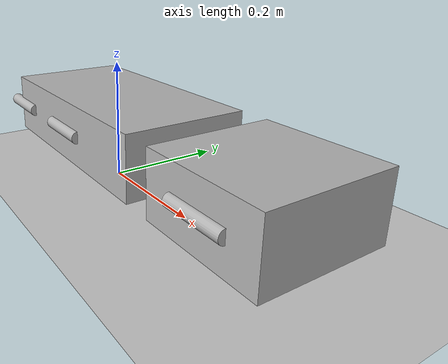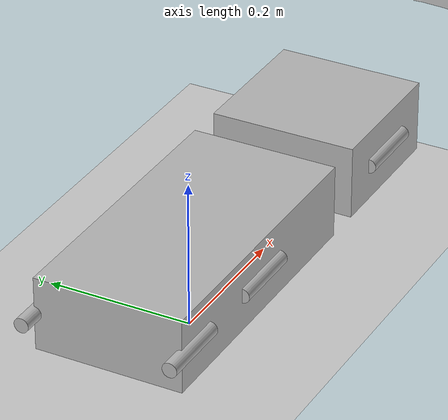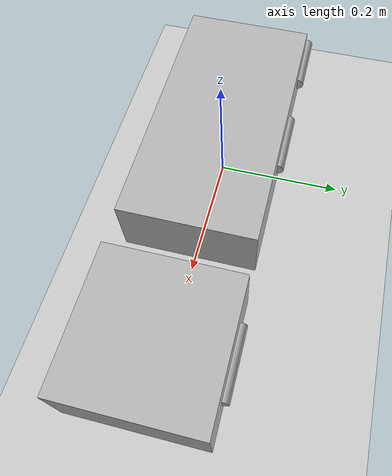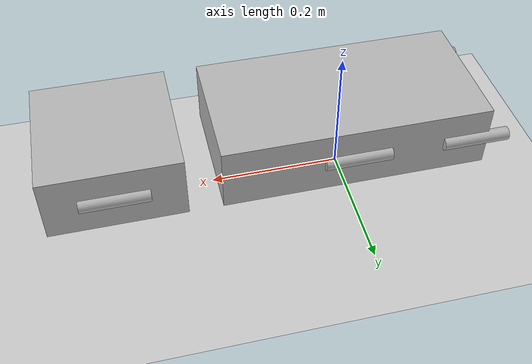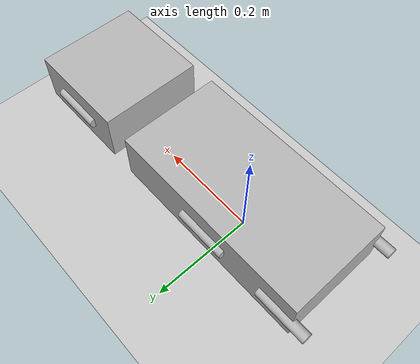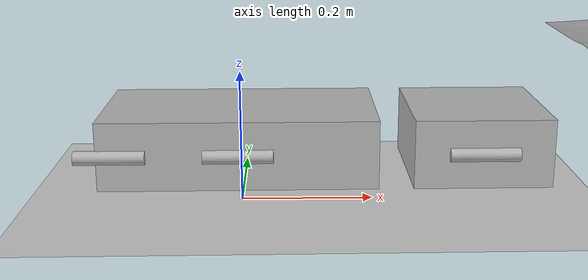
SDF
<?xml version="1.0"?>
<sdf version="1.4">
    <world name="default">

<!-- Ground Plane -->
<include>
    <uri>model://ground_plane</uri>
</include>

<include>
    <uri>model://sun</uri>
</include>

<model name="uneven_terrain">
    <pose>2.5 0 0  0 0 0</pose>
    <static>true</static>
    <link name="uneven terrain">
        <visual name="visual">
            <geometry>
                <mesh><uri>file://mountain2.dae</uri></mesh>
            </geometry>
        </visual>
        <collision name="collision">
            <geometry>
                <mesh><uri>file://mountain2.dae</uri></mesh>
            </geometry>
        </collision>
    </link>
</model>

<model name="my_robot">
    <static> false </static>
    <plugin name="model_push" filename="build/libmodel_push.so"/>
    <link name='chassis_front'>
        <pose> 0.35 0 .10 0 0 0 </pose>
        <inertial>
            <mass> 10 </mass>
        </inertial>
        <collision name='collision'>
            <geometry>
                <box>
                    <size> 0.2 0.2 0.1 </size>
                </box>
            </geometry>
        </collision>
        <visual name='visual'>
            <pose> 0 0 0 0 0 0 </pose>
            <geometry>
                <box>
                    <size> 0.2 0.2 0.1 </size>
                </box>
            </geometry>
        </visual>
        <self_collide> true </self_collide>
    </link>

    <link name='chassis_back'>
        <pose> 0 0 .1 0 0 0 </pose>
        <self_collide> true </self_collide>
        <collision name='collision'>
            <geometry>
                <box>
                    <size> 0.4 0.2 0.1 </size>
                </box>
            </geometry>
        </collision>
        <inertial>
            <mass> 10 </mass>
        </inertial>
        <visual name='visual'>
            <pose> 0 0 0 0 0 0 </pose>
            <geometry>
                <box>
                    <size> 0.4 0.2 0.1 </size>
                </box>
                </geometry>
            </visual>
        </link>

        <joint type="revolute" name="body_joint">
            <pose> -0.1 0 0 0 0 0 </pose>
            <child> chassis_front </child>
            <parent> chassis_back </parent>
            <axis>
                <xyz> 0 1 0 </xyz>
            </axis>
        </joint>

        <link name="leg1">
            <pose> 0.35 0.1 0.1 0  1.57  0 </pose>

            <collision name="collision">
                <geometry>
                    <cylinder>
                        <radius> 0.01 </radius>
                        <length> 0.1 </length>
                    </cylinder>
                </geometry>
            </collision>

            <visual name="visual">
                <geometry>
                    <cylinder>
                        <radius> 0.01 </radius>
                        <length> 0.1 </length>
                    </cylinder>
                </geometry>
            </visual>

            <gravity> 1 </gravity>
        </link>

        <joint type="revolute" name="leg1_joint">
            <pose> 0 0 0.05 0 0 0 </pose>
            <child> leg1 </child>
            <parent> chassis_front </parent>
            <axis>
                <xyz> 0 1 0 </xyz>
            </axis>
        </joint>

        <link name="leg4">
            <pose> 0.35 -0.1 0.1 0  1.57  0 </pose>

            <collision name="collision">
                <geometry>
                    <cylinder>
                        <radius> 0.01 </radius>
                        <length> 0.1 </length>
                    </cylinder>
                </geometry>
            </collision>

            <visual name="visual">
                <geometry>
                    <cylinder>
                        <radius> 0.01 </radius>
                        <length> 0.1 </length>
                    </cylinder>
                </geometry>
            </visual>

            <gravity> 1 </gravity>
        </link>

        <joint type="revolute" name="leg4_joint">
            <pose> 0 0 0.05 0 0 0 </pose>
            <child> leg4 </child>
            <parent> chassis_front </parent>
            <axis>
                <xyz> 0 1 0 </xyz>
            </axis>
        </joint>

        <link name="leg2">
            <pose> 0 0.10 0.1 0  1.57  0 </pose>

            <collision name="collision">
                <geometry>
                    <cylinder>
                        <radius> 0.01 </radius>
                        <length> 0.1 </length>
                    </cylinder>
                </geometry>
            </collision>

            <visual name="visual">
                <geometry>
                    <cylinder>
                        <radius> 0.01 </radius>
                        <length> 0.1 </length>
                    </cylinder>
                </geometry>
            </visual>

            <gravity> 1 </gravity>
        </link>

        <joint type="revolute" name="leg2_joint">
            <pose> 0 0 0.05 0 0 0 </pose>
            <child> leg2 </child>
            <parent> chassis_back </parent>
            <axis>
                <xyz> 0 1 0 </xyz>
            </axis>
        </joint>

        <link name="leg3">
            <pose> -0.18 0.10 0.1 0  1.57  0 </pose>

            <collision name="collision">
                <geometry>
                    <cylinder>
                        <radius> 0.01 </radius>
                        <length> 0.1 </length>
                    </cylinder>
                </geometry>
            </collision>

            <visual name="visual">
                <geometry>
                    <cylinder>
                        <radius> 0.01 </radius>
                        <length> 0.1 </length>
                    </cylinder>
                </geometry>
            </visual>

            <gravity> 1 </gravity>
        </link>

        <joint type="revolute" name="leg3_joint">
            <pose> 0 0 0.05 0 0 0 </pose>
            <child> leg3 </child>
            <parent> chassis_back </parent>
            <axis>
                <xyz> 0 1 0 </xyz>
            </axis>
        </joint>

        <link name="leg5">
            <pose> 0 -0.1 0.1 0  1.57  0 </pose>

            <collision name="collision">
                <geometry>
                    <cylinder>
                        <radius> 0.01 </radius>
                        <length> 0.1 </length>
                    </cylinder>
                </geometry>
            </collision>

            <visual name="visual">
                <geometry>
                    <cylinder>
                        <radius> 0.01 </radius>
                        <length> 0.1 </length>
                    </cylinder>
                </geometry>
            </visual>

            <gravity> 1 </gravity>
        </link>

        <joint type="revolute" name="leg5_joint">
            <pose> 0 0 0.05 0 0 0 </pose>
            <child> leg5 </child>
            <parent> chassis_back </parent>
            <axis>
                <xyz> 0 1 0 </xyz>
            </axis>
        </joint>

        <link name="leg6">
            <pose> -0.18 -0.1 0.1 0  1.57  0 </pose>

            <collision name="collision">
                <geometry>
                    <cylinder>
                        <radius> 0.01 </radius>
                        <length> 0.1 </length>
                    </cylinder>
                </geometry>
            </collision>

            <visual name="visual">
                <geometry>
                    <cylinder>
                        <radius> 0.01 </radius>
                        <length> 0.1 </length>
                    </cylinder>
                </geometry>
            </visual>

            <gravity> 1 </gravity>
        </link>

        <joint type="revolute" name="leg6_joint">
            <pose> 0 0 0.05 0 0 0 </pose>
            <child> leg6 </child>
            <parent> chassis_back </parent>
            <axis>
                <xyz> 0 1 0 </xyz>
            </axis>
        </joint>
    </model>

</world>
</sdf>
